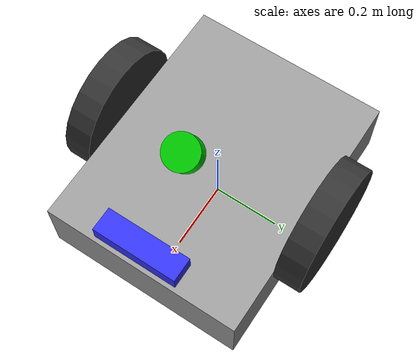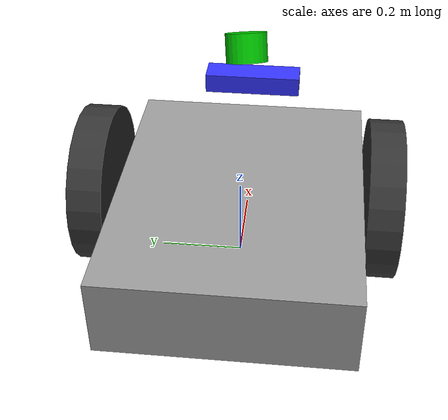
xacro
<?xml version="1.0"?>
<robot name="tank_robot" xmlns:xacro="http://www.ros.org/wiki/xacro">

  <xacro:property name="base_length"  value="0.76"/>
  <xacro:property name="base_width"   value="0.60"/>
  <xacro:property name="base_height"  value="0.20"/>
  <xacro:property name="wheel_radius" value="0.19"/>
  <xacro:property name="wheel_width"  value="0.08"/>

  <!-- BASE LINK -->
  <link name="base_link">
    <visual>
      <origin xyz="0 0 0.1" rpy="0 0 0"/>
      <geometry>
        <box size="${base_length} ${base_width} ${base_height}"/>
      </geometry>
      <material name="gray">
        <color rgba="0.6 0.6 0.6 1"/>
      </material>
    </visual>
    <collision>
      <origin xyz="0 0 0.1" rpy="0 0 0"/>
      <geometry>
        <box size="${base_length} ${base_width} ${base_height}"/>
      </geometry>
    </collision>
    <inertial>
      <mass value="30.0"/>
      <inertia ixx="1.0" ixy="0.0" ixz="0.0"
               iyy="1.0" iyz="0.0"
               izz="1.0"/>
    </inertial>
  </link>

  <!-- LEFT WHEEL -->
  <link name="left_wheel">
    <visual>
      <origin xyz="0 0 0" rpy="1.5708 0 0"/>
      <geometry>
        <cylinder radius="${wheel_radius}" length="${wheel_width}"/>
      </geometry>
      <material name="dark_gray">
        <color rgba="0.2 0.2 0.2 1"/>
      </material>
    </visual>
    <collision>
      <origin xyz="0 0 0" rpy="1.5708 0 0"/>
      <geometry>
        <cylinder radius="${wheel_radius}" length="${wheel_width}"/>
      </geometry>
    </collision>
    <inertial>
      <mass value="3.0"/>
      <inertia ixx="0.05" ixy="0.0" ixz="0.0"
               iyy="0.05" iyz="0.0"
               izz="0.1"/>
    </inertial>
  </link>
  <joint name="left_wheel_joint" type="continuous">
    <parent link="base_link"/>
    <child link="left_wheel"/>
    <origin xyz="0 0.34 ${wheel_radius}" rpy="0 0 0"/>
    <axis xyz="0 1 0"/>
  </joint>

  <!-- RIGHT WHEEL -->
  <link name="right_wheel">
    <visual>
      <origin xyz="0 0 0" rpy="1.5708 0 0"/>
      <geometry>
        <cylinder radius="${wheel_radius}" length="${wheel_width}"/>
      </geometry>
      <material name="dark_gray"/>
    </visual>
    <collision>
      <origin xyz="0 0 0" rpy="1.5708 0 0"/>
      <geometry>
        <cylinder radius="${wheel_radius}" length="${wheel_width}"/>
      </geometry>
    </collision>
    <inertial>
      <mass value="3.0"/>
      <inertia ixx="0.05" ixy="0.0" ixz="0.0"
               iyy="0.05" iyz="0.0"
               izz="0.1"/>
    </inertial>
  </link>
  <joint name="right_wheel_joint" type="continuous">
    <parent link="base_link"/>
    <child link="right_wheel"/>
    <origin xyz="0 -0.34 ${wheel_radius}" rpy="0 0 0"/>
    <axis xyz="0 1 0"/>
  </joint>

  <link name="kinect_link">
    <visual>
      <origin xyz="0 0 0" rpy="0 0 0"/>
      <geometry>
        <box size="0.07 0.25 0.05"/>
      </geometry>
      <material name="blue">
        <color rgba="0.2 0.2 1 1"/>
      </material>
    </visual>
  </link>
  <joint name="kinect_joint" type="fixed">
    <parent link="base_link"/>
    <child link="kinect_link"/>
    <origin xyz="0.35 0 0.30" rpy="0 0 0"/>
  </joint>

  <link name="lidar_link">
    <visual>
      <origin xyz="0 0 0" rpy="0 0 0"/>
      <geometry>
        <cylinder radius="0.05" length="0.07"/>
      </geometry>
      <material name="green">
        <color rgba="0 0.8 0 1"/>
      </material>
    </visual>
  </link>
  <joint name="lidar_joint" type="fixed">
    <parent link="base_link"/>
    <child link="lidar_link"/>

    <origin xyz="0.15 0 0.50" rpy="0.360 0.215 1.273"/>
  </joint>

  <link name="unilidar_lidar"/>
  <joint name="lidar_frame_joint" type="fixed">
    <parent link="lidar_link"/>
    <child link="unilidar_lidar"/>
    <origin xyz="0 0 0" rpy="0 0 0"/>
  </joint>

  <link name="unilidar_imu"/>
  <joint name="lidar_imu_joint" type="fixed">
    <parent link="lidar_link"/>
    <child link="unilidar_imu"/>
    <origin xyz="0 0 0" rpy="0 0 0"/>
  </joint>

</robot>
